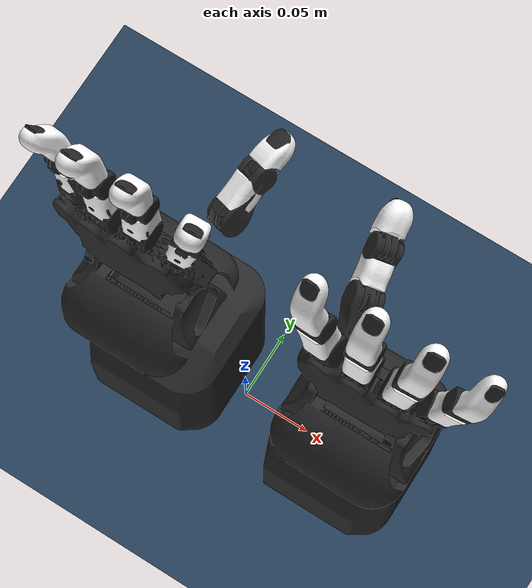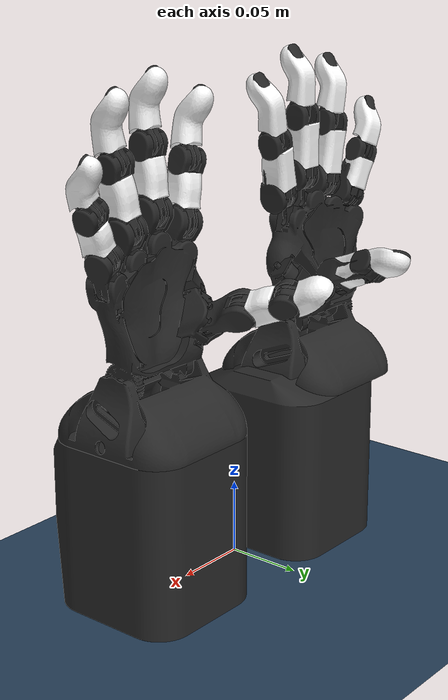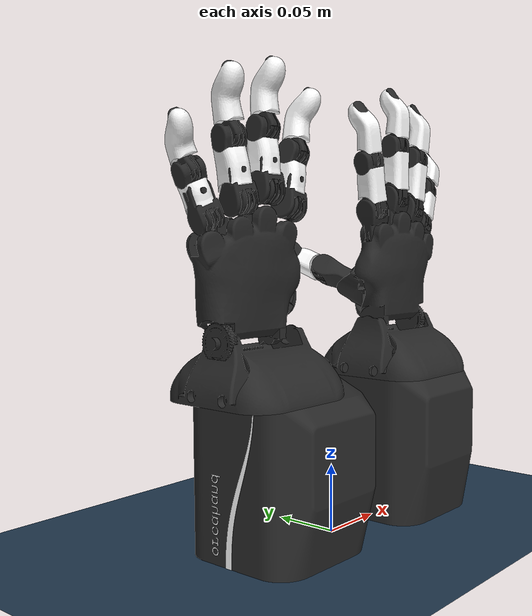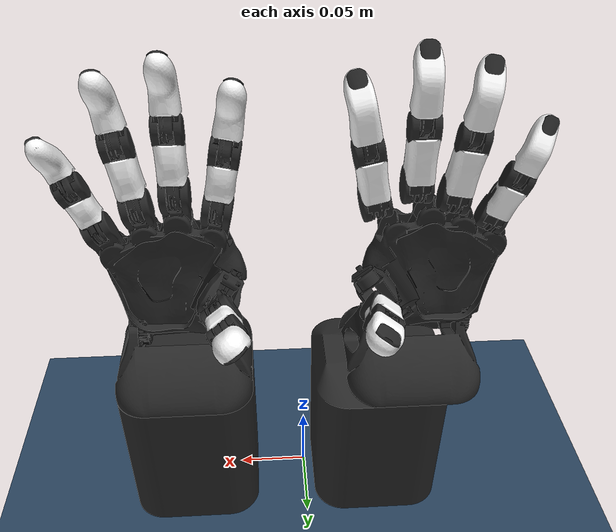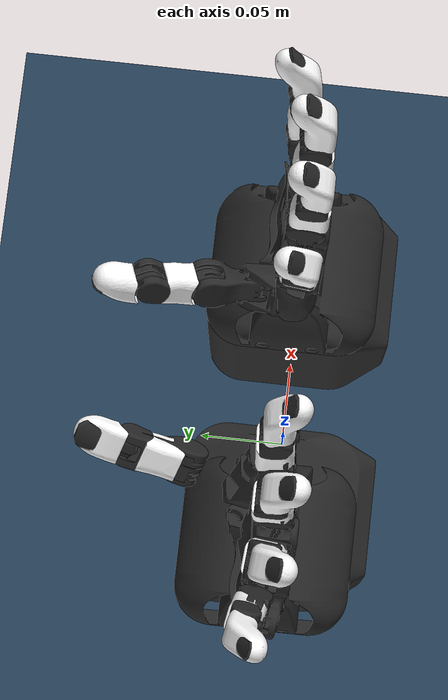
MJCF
<?xml version="1.0" ?>
<mujoco model="ORCA hand combined scene">

  <include file="models/assets/scene.xml"/>

  <include file="models/assets/options.xml"/>

  <include file="models/mjcf/orcahand_left.mjcf"/>
  <include file="models/mjcf/orcahand_right.mjcf"/>

  <worldbody>
    <body name="left_mount" pos="-0.06363 0.00332 0.058" euler="1.5708 0 0">
      <include file="models/mjcf/orcahand_left_body.xml"/>
    </body>
    <body name="right_mount" pos="0.09363 0.00332 0.058" euler="1.5708 0 0">
      <include file="models/mjcf/orcahand_right_body.xml"/>
    </body>
  </worldbody>

</mujoco>

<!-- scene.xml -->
<mujoco model="orcahand_v2_scene">

  <!-- Camera placement -->
  <statistic extent="0.3" center="0 0 0.15"/>
  <visual>
    <rgba haze="0.15 0.25 0.35 1"/>
    <quality shadowsize="8192"/>
    <global azimuth="220" elevation="-30"/>
  </visual>

  <!-- Background -->
  <asset>
    <texture type="skybox" builtin="gradient" rgb1="0.3 0.5 0.7" rgb2="0 0 0" width="512" height="3072"/>
    <texture type="2d" name="groundplane" builtin="checker" mark="edge" rgb1="0.2 0.3 0.4" rgb2="0.1 0.2 0.3"
      markrgb="0.8 0.8 0.8" width="300" height="300"/>
    <material name="groundplane" texture="groundplane" texuniform="true" texrepeat="5 5" reflectance="0.2"/>
  </asset>

  <worldbody>
    <!-- Lighting and floor -->
    <light pos="0 0.5 1" dir="0 -0.3 -1" diffuse="0.8 0.8 0.8" specular="0.2 0.2 0.2"/>
    <light pos="0.3 0.5 1.5" dir="0 -0.3 -1" directional="true" diffuse="0.6 0.6 0.6" specular="0.1 0.1 0.1"/>
    <geom name="floor" pos="0 0 0" size="0 0 0.05" type="plane" material="groundplane"/>

  </worldbody>

</mujoco>

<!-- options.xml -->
<mujoco model="orcahand_v2_options">

  <!-- eulerseq "XYZ" corresponds to URDF "rpy" -->
  <compiler angle="radian" eulerseq="XYZ"/>

  <default>
    <mesh scale="0.001 0.001 0.001"/>
    <!-- Visual classes -->
    <default class="visual_base">
      <geom conaffinity="0" condim="1" contype="0" group="2" type="mesh"/>
      <default class="skin">
        <geom material="white"/>
      </default>
      <default class="bone">
        <geom material="black"/>
      </default>
    </default>
    <!-- Collision class -->
    <default class="collision">
      <geom conaffinity="1" condim="3" contype="1" group="1" material="invisible" type="mesh"/>
    </default>
    <!-- Joints -->
    <joint armature="0.001" damping="0.1" frictionloss="0.001" limited="true" margin="0.01" type="hinge"/>
    <position ctrllimited="true" forcelimited="true" forcerange="-1 1" kp="2.0"/>
  </default>

  <asset>
    <!-- Materials -->
    <material name="white" rgba="1 1 1 1" shininess="0.02" specular="0.005"/>
    <material name="black" rgba="0.1569 0.1569 0.1569 1" shininess="0.5" specular="0.1"/>
    <material name="invisible" rgba="1 1 1 0" shininess="0" specular="0"/>
  </asset>

</mujoco>

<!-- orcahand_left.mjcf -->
<mujoco model="orcahand_left">
	<default>
		<geom type="mesh" friction="1 0.005 0.001" condim="3" margin="0.0005" contype="1" conaffinity="1" />
		<joint type="hinge" limited="true" damping="0.1" armature="0.001" margin="0.01" frictionloss="0.001" />
		<position ctrllimited="true" forcelimited="true" forcerange="-1 1" kp="2.0" />
		<mesh scale="0.001 0.001 0.001" />
	</default>
	<asset>
		<mesh name="left_L-Carpals" file="models/assets/left/L-Carpals.stl" />
		<mesh name="left_P-Assembly" file="models/assets/left/P-Assembly.stl" />
		<mesh name="left_L-T-AP" file="models/assets/left/L-T-AP.stl" />
		<mesh name="left_M-PP" file="models/assets/left/M-PP.stl" />
		<mesh name="left_I-L-Assembly" file="models/assets/left/I-L-Assembly.stl" />
		<mesh name="left_I-PP" file="models/assets/left/I-PP.stl" />
		<mesh name="left_P-AP" file="models/assets/left/P-AP.stl" />
		<mesh name="left_I-AP-L" file="models/assets/left/I-AP-L.stl" />
		<mesh name="left_T-TP-L" file="models/assets/left/T-TP-L.stl" />
		<mesh name="left_ForeArmStructure-Model" file="models/assets/left/ForeArmStructure-Model.stl" />
		<mesh name="left_P-FingerTipAssembly" file="models/assets/left/P-FingerTipAssembly.stl" />
		<mesh name="left_T-DP" file="models/assets/left/T-DP.stl" />
		<mesh name="left_TopTower-Model" file="models/assets/left/TopTower-Model.stl" />
		<mesh name="left_I-FingerTipAssembly" file="models/assets/left/I-FingerTipAssembly.stl" />
		<mesh name="left_T-PP" file="models/assets/left/T-PP.stl" />
		<mesh name="left_M-AP" file="models/assets/left/M-AP.stl" />
		<mesh name="left_M-FingerTipAssembly" file="models/assets/left/M-FingerTipAssembly.stl" />
		<mesh name="left_P-PP" file="models/assets/left/P-PP.stl" />
		<mesh name="left_ForeArmStructure-Model_Logo" file="models/assets/left/ForeArmStructure-Model_Logo.stl" />
		<mesh name="left_T-L-Assembly" file="models/assets/left/T-L-Assembly.stl" />
		<mesh name="left_M-Assembly" file="models/assets/left/M-Assembly.stl" />
		<mesh name="left_T-PP_Skin" file="models/assets/left/T-PP_Skin.stl" />
		<mesh name="left_P-IP_IP" file="models/assets/left/P-IP_IP.stl" />
		<mesh name="left_M-PP_PP" file="models/assets/left/M-PP_PP.stl" />
		<mesh name="left_M-PP_Skin" file="models/assets/left/M-PP_Skin.stl" />
		<mesh name="left_T-DP_Skin" file="models/assets/left/T-DP_Skin.stl" />
		<mesh name="left_P-FingerTipAssembly_P-DP-Skin" file="models/assets/left/P-FingerTipAssembly_P-DP-Skin.stl" />
		<mesh name="left_T-PP_PP" file="models/assets/left/T-PP_PP.stl" />
		<mesh name="left_I-IP_IP" file="models/assets/left/I-IP_IP.stl" />
		<mesh name="left_T-DP_T-DP" file="models/assets/left/T-DP_T-DP.stl" />
		<mesh name="left_P-PP_Skin" file="models/assets/left/P-PP_Skin.stl" />
		<mesh name="left_I-PP_PP" file="models/assets/left/I-PP_PP.stl" />
		<mesh name="left_I-FingerTipAssembly_I-DP-Skin" file="models/assets/left/I-FingerTipAssembly_I-DP-Skin.stl" />
		<mesh name="left_P-PP_PP" file="models/assets/left/P-PP_PP.stl" />
		<mesh name="left_I-PP_Skin" file="models/assets/left/I-PP_Skin.stl" />
		<mesh name="left_M-IP_IP" file="models/assets/left/M-IP_IP.stl" />
		<mesh name="left_M-FingerTipAssembly_M-DP-Skin" file="models/assets/left/M-FingerTipAssembly_M-DP-Skin.stl" />
	</asset>
	<actuator>
		<position name="left_wrist_actuator" joint="left_wrist" ctrlrange="-1.1344640137963142 0.6108652381980153" />
		<position name="left_p-abd_actuator" joint="left_p-abd" ctrlrange="-0.5235987755982988 0.5235987755982988" />
		<position name="left_p-mcp_actuator" joint="left_p-mcp" ctrlrange="-0.4363323129985824 1.7453292519943295" />
		<position name="left_p-pip_actuator" joint="left_p-pip" ctrlrange="-0.2617993877991494 1.8675022996339325" />
		<position name="left_r-abd_actuator" joint="left_r-abd" ctrlrange="-0.47123889803846897 0.47123889803846897" />
		<position name="left_r-mcp_actuator" joint="left_r-mcp" ctrlrange="-0.4363323129985824 1.7453292519943295" />
		<position name="left_r-pip_actuator" joint="left_r-pip" ctrlrange="-0.2617993877991494 1.8675022996339325" />
		<position name="left_m-abd_actuator" joint="left_m-abd" ctrlrange="-0.47123889803846897 0.47123889803846897" />
		<position name="left_m-mcp_actuator" joint="left_m-mcp" ctrlrange="-0.4363323129985824 1.7453292519943295" />
		<position name="left_m-pip_actuator" joint="left_m-pip" ctrlrange="-0.2617993877991494 1.8675022996339325" />
		<position name="left_i-abd_actuator" joint="left_i-abd" ctrlrange="-0.436332313 0.5235987756" />
		<position name="left_i-mcp_actuator" joint="left_i-mcp" ctrlrange="-0.4363323129985824 1.7453292519943295" />
		<position name="left_i-pip_actuator" joint="left_i-pip" ctrlrange="-0.2617993877991494 1.8675022996339325" />
		<position name="left_t-cmc_actuator" joint="left_t-cmc" ctrlrange="-0.7853981633974483 0.5759586531581288" />
		<position name="left_t-abd_actuator" joint="left_t-abd" ctrlrange="-0.3141592653589793 0.9599310885968813" />
		<position name="left_t-mcp_actuator" joint="left_t-mcp" ctrlrange="-0.4363323129985824 1.7453292519943295" />
		<position name="left_t-pip_actuator" joint="left_t-pip" ctrlrange="-0.2617993877991494 1.8675022996339325" />
	</actuator>
	<contact>
		<exclude body1="left_ForeArmStructure-Model_e18f2368" body2="left_TopTower-Model_4a80d30e" />
		<exclude body1="left_ForeArmStructure-Model_e18f2368" body2="left_L-Carpals_719fff8c" />
		<exclude body1="left_TopTower-Model_4a80d30e" body2="left_L-Carpals_719fff8c" />
		<exclude body1="left_ForeArmStructure-Model_e18f2368" body2="left_P-AP_f5e42b61" />
		<exclude body1="left_TopTower-Model_4a80d30e" body2="left_P-AP_f5e42b61" />
		<exclude body1="left_L-Carpals_719fff8c" body2="left_P-AP_f5e42b61" />
		<exclude body1="left_ForeArmStructure-Model_e18f2368" body2="left_P-PP_1d411b9b" />
		<exclude body1="left_TopTower-Model_4a80d30e" body2="left_P-PP_1d411b9b" />
		<exclude body1="left_L-Carpals_719fff8c" body2="left_P-PP_1d411b9b" />
		<exclude body1="left_P-AP_f5e42b61" body2="left_P-PP_1d411b9b" />
		<exclude body1="left_ForeArmStructure-Model_e18f2368" body2="left_P-FingerTipAssembly_cd219176" />
		<exclude body1="left_TopTower-Model_4a80d30e" body2="left_P-FingerTipAssembly_cd219176" />
		<exclude body1="left_L-Carpals_719fff8c" body2="left_P-FingerTipAssembly_cd219176" />
		<exclude body1="left_P-AP_f5e42b61" body2="left_P-FingerTipAssembly_cd219176" />
		<exclude body1="left_P-PP_1d411b9b" body2="left_P-FingerTipAssembly_cd219176" />
		<exclude body1="left_ForeArmStructure-Model_e18f2368" body2="left_M-AP_6ec59111" />
		<exclude body1="left_TopTower-Model_4a80d30e" body2="left_M-AP_6ec59111" />
		<exclude body1="left_L-Carpals_719fff8c" body2="left_M-AP_6ec59111" />
		<exclude body1="left_ForeArmStructure-Model_e18f2368" body2="left_M-PP_8660a1eb" />
		<exclude body1="left_TopTower-Model_4a80d30e" body2="left_M-PP_8660a1eb" />
		<exclude body1="left_L-Carpals_719fff8c" body2="left_M-PP_8660a1eb" />
		<exclude body1="left_M-AP_6ec59111" body2="left_M-PP_8660a1eb" />
		<exclude body1="left_ForeArmStructure-Model_e18f2368" body2="left_M-FingerTipAssembly_424a8e75" />
		<exclude body1="left_TopTower-Model_4a80d30e" body2="left_M-FingerTipAssembly_424a8e75" />
		<exclude body1="left_L-Carpals_719fff8c" body2="left_M-FingerTipAssembly_424a8e75" />
		<exclude body1="left_M-AP_6ec59111" body2="left_M-FingerTipAssembly_424a8e75" />
		<exclude body1="left_M-PP_8660a1eb" body2="left_M-FingerTipAssembly_424a8e75" />
		<exclude body1="left_ForeArmStructure-Model_e18f2368" body2="left_M-AP_e04a96f2" />
		<exclude body1="left_TopTower-Model_4a80d30e" body2="left_M-AP_e04a96f2" />
		<exclude body1="left_L-Carpals_719fff8c" body2="left_M-AP_e04a96f2" />
		<exclude body1="left_ForeArmStructure-Model_e18f2368" body2="left_M-PP_08efa608" />
		<exclude body1="left_TopTower-Model_4a80d30e" body2="left_M-PP_08efa608" />
		<exclude body1="left_L-Carpals_719fff8c" body2="left_M-PP_08efa608" />
		<exclude body1="left_M-AP_e04a96f2" body2="left_M-PP_08efa608" />
		<exclude body1="left_ForeArmStructure-Model_e18f2368" body2="left_M-FingerTipAssembly_34afb748" />
		<exclude body1="left_TopTower-Model_4a80d30e" body2="left_M-FingerTipAssembly_34afb748" />
		<exclude body1="left_L-Carpals_719fff8c" body2="left_M-FingerTipAssembly_34afb748" />
		<exclude body1="left_M-AP_e04a96f2" body2="left_M-FingerTipAssembly_34afb748" />
		<exclude body1="left_M-PP_08efa608" body2="left_M-FingerTipAssembly_34afb748" />
		<exclude body1="left_ForeArmStructure-Model_e18f2368" body2="left_I-AP-L_57ce92f7" />
		<exclude body1="left_TopTower-Model_4a80d30e" body2="left_I-AP-L_57ce92f7" />
		<exclude body1="left_L-Carpals_719fff8c" body2="left_I-AP-L_57ce92f7" />
		<exclude body1="left_ForeArmStructure-Model_e18f2368" body2="left_I-PP_3df4f91d" />
		<exclude body1="left_TopTower-Model_4a80d30e" body2="left_I-PP_3df4f91d" />
		<exclude body1="left_L-Carpals_719fff8c" body2="left_I-PP_3df4f91d" />
		<exclude body1="left_I-AP-L_57ce92f7" body2="left_I-PP_3df4f91d" />
		<exclude body1="left_ForeArmStructure-Model_e18f2368" body2="left_I-FingerTipAssembly_ed91b18a" />
		<exclude body1="left_TopTower-Model_4a80d30e" body2="left_I-FingerTipAssembly_ed91b18a" />
		<exclude body1="left_L-Carpals_719fff8c" body2="left_I-FingerTipAssembly_ed91b18a" />
		<exclude body1="left_I-AP-L_57ce92f7" body2="left_I-FingerTipAssembly_ed91b18a" />
		<exclude body1="left_I-PP_3df4f91d" body2="left_I-FingerTipAssembly_ed91b18a" />
		<exclude body1="left_ForeArmStructure-Model_e18f2368" body2="left_T-TP-L_92b8100b" />
		<exclude body1="left_TopTower-Model_4a80d30e" body2="left_T-TP-L_92b8100b" />
		<exclude body1="left_L-Carpals_719fff8c" body2="left_T-TP-L_92b8100b" />
		<exclude body1="left_ForeArmStructure-Model_e18f2368" body2="left_L-T-AP_58680c44" />
		<exclude body1="left_TopTower-Model_4a80d30e" body2="left_L-T-AP_58680c44" />
		<exclude body1="left_L-Carpals_719fff8c" body2="left_L-T-AP_58680c44" />
		<exclude body1="left_T-TP-L_92b8100b" body2="left_L-T-AP_58680c44" />
		<exclude body1="left_ForeArmStructure-Model_e18f2368" body2="left_T-PP_ef067304" />
		<exclude body1="left_TopTower-Model_4a80d30e" body2="left_T-PP_ef067304" />
		<exclude body1="left_L-Carpals_719fff8c" body2="left_T-PP_ef067304" />
		<exclude body1="left_T-TP-L_92b8100b" body2="left_T-PP_ef067304" />
		<exclude body1="left_L-T-AP_58680c44" body2="left_T-PP_ef067304" />
		<exclude body1="left_ForeArmStructure-Model_e18f2368" body2="left_T-DP_307db3cc" />
		<exclude body1="left_TopTower-Model_4a80d30e" body2="left_T-DP_307db3cc" />
		<exclude body1="left_L-Carpals_719fff8c" body2="left_T-DP_307db3cc" />
		<exclude body1="left_T-TP-L_92b8100b" body2="left_T-DP_307db3cc" />
		<exclude body1="left_L-T-AP_58680c44" body2="left_T-DP_307db3cc" />
		<exclude body1="left_T-PP_ef067304" body2="left_T-DP_307db3cc" />
	</contact>
</mujoco>

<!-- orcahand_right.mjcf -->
<mujoco model="orcahand_right">
	<default>
		<geom type="mesh" friction="1 0.005 0.001" condim="3" margin="0.0005" contype="1" conaffinity="1" />
		<joint type="hinge" limited="true" damping="0.1" armature="0.001" margin="0.01" frictionloss="0.001" />
		<position ctrllimited="true" forcelimited="true" forcerange="-1 1" kp="2.0" />
		<mesh scale="0.001 0.001 0.001" />
	</default>
	<asset>
		<mesh name="right_I-R-Assembly" file="models/assets/right/I-R-Assembly.stl" />
		<mesh name="right_P-Assembly" file="models/assets/right/P-Assembly.stl" />
		<mesh name="right_R-T-AP" file="models/assets/right/R-T-AP.stl" />
		<mesh name="right_M-PP" file="models/assets/right/M-PP.stl" />
		<mesh name="right_I-PP" file="models/assets/right/I-PP.stl" />
		<mesh name="right_P-AP" file="models/assets/right/P-AP.stl" />
		<mesh name="right_ForeArmStructure-Model" file="models/assets/right/ForeArmStructure-Model.stl" />
		<mesh name="right_P-FingerTipAssembly" file="models/assets/right/P-FingerTipAssembly.stl" />
		<mesh name="right_T-DP" file="models/assets/right/T-DP.stl" />
		<mesh name="right_TopTower-Model" file="models/assets/right/TopTower-Model.stl" />
		<mesh name="right_I-FingerTipAssembly" file="models/assets/right/I-FingerTipAssembly.stl" />
		<mesh name="right_I-AP-R" file="models/assets/right/I-AP-R.stl" />
		<mesh name="right_T-TP-R" file="models/assets/right/T-TP-R.stl" />
		<mesh name="right_R-Carpals" file="models/assets/right/R-Carpals.stl" />
		<mesh name="right_T-PP" file="models/assets/right/T-PP.stl" />
		<mesh name="right_M-AP" file="models/assets/right/M-AP.stl" />
		<mesh name="right_M-FingerTipAssembly" file="models/assets/right/M-FingerTipAssembly.stl" />
		<mesh name="right_T-R-Assembly" file="models/assets/right/T-R-Assembly.stl" />
		<mesh name="right_P-PP" file="models/assets/right/P-PP.stl" />
		<mesh name="right_ForeArmStructure-Model_Logo" file="models/assets/right/ForeArmStructure-Model_Logo.stl" />
		<mesh name="right_M-Assembly" file="models/assets/right/M-Assembly.stl" />
		<mesh name="right_T-PP_Skin" file="models/assets/right/T-PP_Skin.stl" />
		<mesh name="right_P-IP_IP" file="models/assets/right/P-IP_IP.stl" />
		<mesh name="right_M-PP_PP" file="models/assets/right/M-PP_PP.stl" />
		<mesh name="right_M-PP_Skin" file="models/assets/right/M-PP_Skin.stl" />
		<mesh name="right_T-DP_Skin" file="models/assets/right/T-DP_Skin.stl" />
		<mesh name="right_P-FingerTipAssembly_P-DP-Skin" file="models/assets/right/P-FingerTipAssembly_P-DP-Skin.stl" />
		<mesh name="right_T-PP_PP" file="models/assets/right/T-PP_PP.stl" />
		<mesh name="right_I-IP_IP" file="models/assets/right/I-IP_IP.stl" />
		<mesh name="right_T-DP_T-DP" file="models/assets/right/T-DP_T-DP.stl" />
		<mesh name="right_P-PP_Skin" file="models/assets/right/P-PP_Skin.stl" />
		<mesh name="right_I-PP_PP" file="models/assets/right/I-PP_PP.stl" />
		<mesh name="right_I-FingerTipAssembly_I-DP-Skin" file="models/assets/right/I-FingerTipAssembly_I-DP-Skin.stl" />
		<mesh name="right_P-PP_PP" file="models/assets/right/P-PP_PP.stl" />
		<mesh name="right_I-PP_Skin" file="models/assets/right/I-PP_Skin.stl" />
		<mesh name="right_M-IP_IP" file="models/assets/right/M-IP_IP.stl" />
		<mesh name="right_M-FingerTipAssembly_M-DP-Skin" file="models/assets/right/M-FingerTipAssembly_M-DP-Skin.stl" />
	</asset>
	<actuator>
		<position name="right_wrist_actuator" joint="right_wrist" ctrlrange="-1.1344640137963142 0.6108652381980153" />
		<position name="right_p-abd_actuator" joint="right_p-abd" ctrlrange="-0.5235987755982988 0.5235987755982988" />
		<position name="right_p-mcp_actuator" joint="right_p-mcp" ctrlrange="-0.4363323129985824 1.7453292519943295" />
		<position name="right_p-pip_actuator" joint="right_p-pip" ctrlrange="-0.2617993877991494 1.8675022996339325" />
		<position name="right_r-abd_actuator" joint="right_r-abd" ctrlrange="-0.47123889803846897 0.47123889803846897" />
		<position name="right_r-mcp_actuator" joint="right_r-mcp" ctrlrange="-0.4363323129985824 1.7453292519943295" />
		<position name="right_r-pip_actuator" joint="right_r-pip" ctrlrange="-0.2617993877991494 1.8675022996339325" />
		<position name="right_m-abd_actuator" joint="right_m-abd" ctrlrange="-0.47123889803846897 0.47123889803846897" />
		<position name="right_m-mcp_actuator" joint="right_m-mcp" ctrlrange="-0.4363323129985824 1.7453292519943295" />
		<position name="right_m-pip_actuator" joint="right_m-pip" ctrlrange="-0.2617993877991494 1.8675022996339325" />
		<position name="right_i-abd_actuator" joint="right_i-abd" ctrlrange="-0.4363323129985824 0.5235987755982988" />
		<position name="right_i-mcp_actuator" joint="right_i-mcp" ctrlrange="-0.4363323129985824 1.7453292519943295" />
		<position name="right_i-pip_actuator" joint="right_i-pip" ctrlrange="-0.2617993877991494 1.8675022996339325" />
		<position name="right_t-cmc_actuator" joint="right_t-cmc" ctrlrange="-0.7853981633974483 0.5759586531581288" />
		<position name="right_t-abd_actuator" joint="right_t-abd" ctrlrange="-0.3141592653589793 0.9599310885968813" />
		<position name="right_t-mcp_actuator" joint="right_t-mcp" ctrlrange="-0.4363323129985824 1.7453292519943295" />
		<position name="right_t-pip_actuator" joint="right_t-pip" ctrlrange="-0.2617993877991494 1.8675022996339325" />
	</actuator>
	<contact>
		<exclude body1="right_ForeArmStructure-Model_e18f2368" body2="right_TopTower-Model_4a80d30e" />
		<exclude body1="right_ForeArmStructure-Model_e18f2368" body2="right_R-Carpals_8d1f1041" />
		<exclude body1="right_TopTower-Model_4a80d30e" body2="right_R-Carpals_8d1f1041" />
		<exclude body1="right_ForeArmStructure-Model_e18f2368" body2="right_P-AP_f5e42b61" />
		<exclude body1="right_TopTower-Model_4a80d30e" body2="right_P-AP_f5e42b61" />
		<exclude body1="right_R-Carpals_8d1f1041" body2="right_P-AP_f5e42b61" />
		<exclude body1="right_ForeArmStructure-Model_e18f2368" body2="right_P-PP_1d411b9b" />
		<exclude body1="right_TopTower-Model_4a80d30e" body2="right_P-PP_1d411b9b" />
		<exclude body1="right_R-Carpals_8d1f1041" body2="right_P-PP_1d411b9b" />
		<exclude body1="right_P-AP_f5e42b61" body2="right_P-PP_1d411b9b" />
		<exclude body1="right_ForeArmStructure-Model_e18f2368" body2="right_P-FingerTipAssembly_cd219176" />
		<exclude body1="right_TopTower-Model_4a80d30e" body2="right_P-FingerTipAssembly_cd219176" />
		<exclude body1="right_R-Carpals_8d1f1041" body2="right_P-FingerTipAssembly_cd219176" />
		<exclude body1="right_P-AP_f5e42b61" body2="right_P-FingerTipAssembly_cd219176" />
		<exclude body1="right_P-PP_1d411b9b" body2="right_P-FingerTipAssembly_cd219176" />
		<exclude body1="right_ForeArmStructure-Model_e18f2368" body2="right_M-AP_6ec59111" />
		<exclude body1="right_TopTower-Model_4a80d30e" body2="right_M-AP_6ec59111" />
		<exclude body1="right_R-Carpals_8d1f1041" body2="right_M-AP_6ec59111" />
		<exclude body1="right_ForeArmStructure-Model_e18f2368" body2="right_M-PP_8660a1eb" />
		<exclude body1="right_TopTower-Model_4a80d30e" body2="right_M-PP_8660a1eb" />
		<exclude body1="right_R-Carpals_8d1f1041" body2="right_M-PP_8660a1eb" />
		<exclude body1="right_M-AP_6ec59111" body2="right_M-PP_8660a1eb" />
		<exclude body1="right_ForeArmStructure-Model_e18f2368" body2="right_M-FingerTipAssembly_424a8e75" />
		<exclude body1="right_TopTower-Model_4a80d30e" body2="right_M-FingerTipAssembly_424a8e75" />
		<exclude body1="right_R-Carpals_8d1f1041" body2="right_M-FingerTipAssembly_424a8e75" />
		<exclude body1="right_M-AP_6ec59111" body2="right_M-FingerTipAssembly_424a8e75" />
		<exclude body1="right_M-PP_8660a1eb" body2="right_M-FingerTipAssembly_424a8e75" />
		<exclude body1="right_ForeArmStructure-Model_e18f2368" body2="right_M-AP_e04a96f2" />
		<exclude body1="right_TopTower-Model_4a80d30e" body2="right_M-AP_e04a96f2" />
		<exclude body1="right_R-Carpals_8d1f1041" body2="right_M-AP_e04a96f2" />
		<exclude body1="right_ForeArmStructure-Model_e18f2368" body2="right_M-PP_08efa608" />
		<exclude body1="right_TopTower-Model_4a80d30e" body2="right_M-PP_08efa608" />
		<exclude body1="right_R-Carpals_8d1f1041" body2="right_M-PP_08efa608" />
		<exclude body1="right_M-AP_e04a96f2" body2="right_M-PP_08efa608" />
		<exclude body1="right_ForeArmStructure-Model_e18f2368" body2="right_M-FingerTipAssembly_34afb748" />
		<exclude body1="right_TopTower-Model_4a80d30e" body2="right_M-FingerTipAssembly_34afb748" />
		<exclude body1="right_R-Carpals_8d1f1041" body2="right_M-FingerTipAssembly_34afb748" />
		<exclude body1="right_M-AP_e04a96f2" body2="right_M-FingerTipAssembly_34afb748" />
		<exclude body1="right_M-PP_08efa608" body2="right_M-FingerTipAssembly_34afb748" />
		<exclude body1="right_ForeArmStructure-Model_e18f2368" body2="right_I-AP-R_d95d02d1" />
		<exclude body1="right_TopTower-Model_4a80d30e" body2="right_I-AP-R_d95d02d1" />
		<exclude body1="right_R-Carpals_8d1f1041" body2="right_I-AP-R_d95d02d1" />
		<exclude body1="right_ForeArmStructure-Model_e18f2368" body2="right_I-PP_bacbd481" />
		<exclude body1="right_TopTower-Model_4a80d30e" body2="right_I-PP_bacbd481" />
		<exclude body1="right_R-Carpals_8d1f1041" body2="right_I-PP_bacbd481" />
		<exclude body1="right_I-AP-R_d95d02d1" body2="right_I-PP_bacbd481" />
		<exclude body1="right_ForeArmStructure-Model_e18f2368" body2="right_I-FingerTipAssembly_ec49c16c" />
		<exclude body1="right_TopTower-Model_4a80d30e" body2="right_I-FingerTipAssembly_ec49c16c" />
		<exclude body1="right_R-Carpals_8d1f1041" body2="right_I-FingerTipAssembly_ec49c16c" />
		<exclude body1="right_I-AP-R_d95d02d1" body2="right_I-FingerTipAssembly_ec49c16c" />
		<exclude body1="right_I-PP_bacbd481" body2="right_I-FingerTipAssembly_ec49c16c" />
		<exclude body1="right_ForeArmStructure-Model_e18f2368" body2="right_T-TP-R_1c2b802d" />
		<exclude body1="right_TopTower-Model_4a80d30e" body2="right_T-TP-R_1c2b802d" />
		<exclude body1="right_R-Carpals_8d1f1041" body2="right_T-TP-R_1c2b802d" />
		<exclude body1="right_ForeArmStructure-Model_e18f2368" body2="right_R-T-AP_a9723101" />
		<exclude body1="right_TopTower-Model_4a80d30e" body2="right_R-T-AP_a9723101" />
		<exclude body1="right_R-Carpals_8d1f1041" body2="right_R-T-AP_a9723101" />
		<exclude body1="right_T-TP-R_1c2b802d" body2="right_R-T-AP_a9723101" />
		<exclude body1="right_ForeArmStructure-Model_e18f2368" body2="right_T-PP_68395e98" />
		<exclude body1="right_TopTower-Model_4a80d30e" body2="right_T-PP_68395e98" />
		<exclude body1="right_R-Carpals_8d1f1041" body2="right_T-PP_68395e98" />
		<exclude body1="right_T-TP-R_1c2b802d" body2="right_T-PP_68395e98" />
		<exclude body1="right_R-T-AP_a9723101" body2="right_T-PP_68395e98" />
		<exclude body1="right_ForeArmStructure-Model_e18f2368" body2="right_T-DP_b7429e50" />
		<exclude body1="right_TopTower-Model_4a80d30e" body2="right_T-DP_b7429e50" />
		<exclude body1="right_R-Carpals_8d1f1041" body2="right_T-DP_b7429e50" />
		<exclude body1="right_T-TP-R_1c2b802d" body2="right_T-DP_b7429e50" />
		<exclude body1="right_R-T-AP_a9723101" body2="right_T-DP_b7429e50" />
		<exclude body1="right_T-PP_68395e98" body2="right_T-DP_b7429e50" />
	</contact>
</mujoco>

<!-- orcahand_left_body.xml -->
<mujoco model="orcahand_left_body">
	<body name="left_tower" quat="1.0 0.0 0.0 0.0">
		<body name="left_ForeArmStructure-Model_e18f2368" pos="0.0 0.0 0.0" quat="1.0 0.0 0.0 0.0">
			<body name="left_TopTower-Model_4a80d30e" pos="-0.010000000000000018 0.05230000000000584 -2.0816681711721685e-17" quat="-0.4999999999999985 0.4999999999999986 -0.5 -0.49999999999999994">
				<body name="left_L-Carpals_719fff8c" pos="-0.0018770780631086439 0.005000000000000008 0.0895000006705525" quat="-0.7071067811865476 -1.7172886266853953e-17 -7.605135346749523e-17 0.7071067811865495">
					<body name="left_T-TP-L_92b8100b" pos="0.031213412275949873 0.01433246945435058 -0.02172481544690435" quat="0.656374345900825 -0.07257037461795694 0.3594909813403495 -0.6592969688281836">
						<body name="left_L-T-AP_58680c44" pos="-0.035999999999999976 1.0408340855860843e-17 -1.2533377113932431e-16" quat="0.8191520442889911 0.5735764363510457 -6.661338147750939e-16 1.609823385706477e-15">
							<body name="left_T-PP_ef067304" pos="3.6356335937636955e-17 -7.738818763564917e-18 -1.3080846264541988e-17" quat="1.4432899320127035e-15 -0.7071067811865464 -9.159339953157541e-16 0.707106781186545">
								<body name="left_T-DP_307db3cc" pos="0.0009999999999999853 -2.2551405187698492e-17 0.03200000000000017" quat="1.0000000000000027 0.0 2.7755575615628914e-17 1.942890293094024e-15">
									<joint name="left_t-pip" pos="6.724022184779712e-17 -4.880775102973274e-17 1.5021079906053094e-16" axis="-8.604228440844963e-16 -0.9999999999999971 -4.440892098500626e-16" range="-0.2617993877991494 1.8675022996339325" ref="0.0" />
									<geom mesh="left_T-DP_T-DP" material="black" pos="0.0 0.0 0.0" quat="1.0 0.0 0.0 0.0" />
									<geom mesh="left_T-DP_Skin" material="white" pos="0.0 0.0 0.0" quat="1.0 0.0 0.0 0.0" contype="0" conaffinity="0" />
								</body>
								<joint name="left_t-mcp" pos="-3.7171156597089945e-17 -5.821788984262281e-17 6.75998716698855e-17" axis="3.1086244689504383e-15 -1.0000000000000049 -2.7755575615628914e-16" range="-0.4363323129985824 1.7453292519943295" ref="0.0" />
								<geom mesh="left_T-PP_Skin" material="white" pos="-1.7763568394002505e-17 -1.7763568394002505e-17 1.7763568394002505e-17" quat="1.0 2.0816681711721685e-17 1.3877787807814457e-17 -1.3877787807814457e-17" contype="0" conaffinity="0" />
								<geom mesh="left_T-PP_PP" material="black" pos="-1.7763568394002505e-17 -1.7763568394002505e-17 1.7763568394002505e-17" quat="1.0 2.0816681711721685e-17 1.3877787807814457e-17 -1.3877787807814457e-17" />
							</body>
							<joint name="left_t-abd" pos="0.028000000000000018 -2.7755575615628914e-17 2.7321894746634712e-17" axis="1.27675647831893e-15 0.3420201433256675 -0.9396926207859057" range="-0.3141592653589793 0.9599310885968813" ref="0.0" />
							<geom mesh="left_L-T-AP" material="black" />
						</body>
						<joint name="left_t-cmc" pos="1.5016200088924236e-17 5.139118297581291e-17 0.0038500000000000643" axis="-2.435551760271437e-15 3.885780586188048e-16 0.9999999999999951" range="-0.7853981633974483 0.5759586531581288" ref="0.0" />
						<geom mesh="left_T-TP-L" material="black" />
					</body>
					<body name="left_I-AP-L_57ce92f7" pos="0.03557227633914042 0.0006806400972512766 0.03835792095624094" quat="-0.47163838811428216 -0.4317797959371625 -0.5666863557305154 0.5196056320963941">
						<body name="left_I-PP_3df4f91d" pos="-0.0004009681508766555 -7.792703114739563e-18 2.9526348813840864e-15" quat="-0.7071067811865466 -2.3314683517128287e-15 0.7071067811865461 2.0539125955565396e-15">
							<body name="left_I-FingerTipAssembly_ed91b18a" pos="0.0014999999999999937 5.637851296924623e-18 0.03700000000000012" quat="1.0000000000000022 1.5959455978986625e-16 -1.3877787807814457e-17 3.3306690738754696e-15">
								<joint name="left_i-pip" pos="4.938281810987171e-18 -1.7671634284259278e-17 -5.964481871782928e-17" axis="-3.552713678800501e-15 -0.9999999999999964 2.706168622523819e-16" range="-0.2617993877991494 1.8675022996339325" ref="0.0" />
								<geom mesh="left_I-FingerTipAssembly_I-DP-Skin" material="white" pos="0.0 0.0 0.0" quat="1.0 0.0 0.0 0.0" contype="0" conaffinity="0" />
								<geom mesh="left_I-IP_IP" material="black" pos="0.0 0.0 0.0" quat="1.0 0.0 0.0 0.0" />
							</body>
							<joint name="left_i-mcp" pos="-3.9536780632609477e-19 -8.231990831039655e-18 1.396150100408705e-16" axis="5.995204332975845e-15 -1.0000000000000038 2.0816681711721685e-17" range="-0.4363323129985824 1.7453292519943295" ref="0.0" />
							<geom mesh="left_I-PP_Skin" material="white" pos="7.28583859910259e-19 -2.220446049250313e-18 3.552713678800501e-17" quat="1.0 -6.938893903907228e-18 -1.3010426069826053e-18 5.637851296924623e-18" contype="0" conaffinity="0" />
							<geom mesh="left_I-PP_PP" material="black" pos="7.28583859910259e-19 -2.220446049250313e-18 3.552713678800501e-17" quat="1.0 -6.938893903907228e-18 -1.3010426069826053e-18 5.637851296924623e-18" />
						</body>
						<joint name="left_i-abd" pos="0.018750000000000086 -1.8214596497756474e-17 0.000999999999999993" axis="-0.03128510081059521 0.16814409541512249 -0.9852658553123104" range="-0.436332313 0.5235987756" ref="-0.0" />
						<geom mesh="left_I-AP-L" material="black" />
					</body>
					<body name="left_M-AP_e04a96f2" pos="0.010758073950624194 -0.0011463260089169375 0.0482518232227061" quat="-0.49932759692114675 -0.4993275969211465 -0.50067150004065 0.5006715000406502">
						<body name="left_M-PP_08efa608" pos="-0.0006169679429056389 -5.936006894358137e-18 4.45032465740125e-15" quat="-0.7071067811865465 -1.942890293094024e-15 0.7071067811865461 2.1094237467877974e-15">
							<body name="left_M-FingerTipAssembly_34afb748" pos="0.002000000000000013 -3.2526065174565133e-18 0.040000000000000056" quat="1.0000000000000024 1.1655173354219173e-16 4.7813315806610746e-17 3.1086244689504383e-15">
								<joint name="left_m-pip" pos="-1.474514954580278e-17 -2.2103714476980423e-17 -1.665934659025852e-16" axis="-3.2751579226442118e-15 -0.9999999999999984 7.968885967768458e-17" range="-0.2617993877991494 1.8675022996339325" ref="0.0" />
								<geom mesh="left_M-FingerTipAssembly_M-DP-Skin" material="white" pos="0.0 0.0 0.0" quat="1.0 0.0 0.0 0.0" contype="0" conaffinity="0" />
								<geom mesh="left_M-IP_IP" material="black" pos="0.0 0.0 0.0" quat="1.0 0.0 0.0 0.0" />
							</body>
							<joint name="left_m-mcp" pos="-3.0357660829593107e-18 -1.7841522994185985e-17 -1.3882633405336455e-16" axis="5.773159728050814e-15 -1.000000000000006 -1.476683358925257e-16" range="-0.4363323129985824 1.7453292519943295" ref="0.0" />
							<geom mesh="left_M-PP_Skin" material="white" pos="0.0 2.220446049250313e-18 0.0" quat="1.0 0.0 3.0814879110195774e-33 -2.10335624051391e-31" contype="0" conaffinity="0" />
							<geom mesh="left_M-PP_PP" material="black" pos="0.0 2.220446049250313e-18 0.0" quat="1.0 0.0 3.0814879110195774e-33 -2.10335624051391e-31" />
						</body>
						<joint name="left_m-abd" pos="0.019249999999999934 -2.6020852139652106e-17 0.0009999999999999913" axis="-6.106226635438361e-16 1.6653345369377348e-16 -0.9999999999999963" range="-0.47123889803846897 0.47123889803846897" ref="-0.0" />
						<geom mesh="left_M-AP" material="black" />
					</body>
					<body name="left_M-AP_6ec59111" pos="-0.013004413961368904 -0.00010153680172964337 0.04085088188107136" quat="-0.5143887032276867 -0.554717937998398 -0.4385065669551668 0.4851847709808502">
						<body name="left_M-PP_8660a1eb" pos="-0.0006169679429056013 1.8973538018496328e-19 4.444768121267262e-15" quat="-0.7071067811865466 -1.9984014443252818e-15 0.7071067811865461 2.0539125955565396e-15">
							<body name="left_M-FingerTipAssembly_424a8e75" pos="0.002000000000000003 -2.0274580625478933e-17 0.040000000000000105" quat="1.0000000000000022 1.1102230246251565e-16 4.85722573273506e-17 3.2751579226442118e-15">
								<joint name="left_r-pip" pos="3.0277404230089883e-19 3.103847689461043e-17 -4.554030083181501e-18" axis="-3.4416913763379853e-15 -0.9999999999999967 1.5265566588595902e-16" range="-0.2617993877991494 1.8675022996339325" ref="0.0" />
								<geom mesh="left_M-FingerTipAssembly_M-DP-Skin" material="white" pos="0.0 0.0 0.0" quat="1.0 0.0 0.0 0.0" contype="0" conaffinity="0" />
								<geom mesh="left_M-IP_IP" material="black" pos="0.0 0.0 0.0" quat="1.0 0.0 0.0 0.0" />
							</body>
							<joint name="left_r-mcp" pos="7.77890138008401e-19 5.960928375611919e-19 -1.4035114566359072e-16" axis="6.050715484207103e-15 -1.0000000000000036 -5.551115123125783e-17" range="-0.4363323129985824 1.7453292519943295" ref="0.0" />
							<geom mesh="left_M-PP_Skin" material="white" pos="0.0 -4.440892098500626e-18 -3.552713678800501e-17" quat="1.0 6.938893903907228e-18 8.076402051607204e-19 -4.287881788168087e-18" contype="0" conaffinity="0" />
							<geom mesh="left_M-PP_PP" material="black" pos="0.0 -4.440892098500626e-18 -3.552713678800501e-17" quat="1.0 6.938893903907228e-18 8.076402051607204e-19 -4.287881788168087e-18" />
						</body>
						<joint name="left_r-abd" pos="0.019249999999999958 -6.938893903907228e-18 0.0009999999999999905" axis="-0.025208135220825684 -0.17180872948058878 -0.9848077530122064" range="-0.47123889803846897 0.47123889803846897" ref="-0.0" />
						<geom mesh="left_M-AP" material="black" />
					</body>
					<body name="left_P-AP_f5e42b61" pos="-0.036667924695998784 0.0050008241469496235 0.02910175144072915" quat="-0.5461467691399455 -0.613860158565644 -0.34021487235312026 0.45733275950178043">
						<body name="left_P-PP_1d411b9b" pos="3.833251243929697e-17 2.2445923627098072e-17 -3.593641296366732e-18" quat="-0.7071067811865466 -1.7763568394002505e-15 0.7071067811865459 1.7763568394002505e-15">
							<body name="left_P-FingerTipAssembly_cd219176" pos="0.000999999999999991 -7.806255641895632e-18 0.03100000000000007" quat="1.0000000000000022 6.938893903907228e-17 0.0 2.942091015256665e-15">
								<joint name="left_p-pip" pos="5.74536201685304e-18 -2.544098244259518e-17 -2.2826085315357464e-16" axis="-3.164135620181696e-15 -0.9999999999999976 1.1102230246251565e-16" range="-0.2617993877991494 1.8675022996339325" ref="0.0" />
								<geom mesh="left_P-FingerTipAssembly_P-DP-Skin" material="white" pos="0.0 0.0 0.0" quat="1.0 0.0 0.0 0.0" contype="0" conaffinity="0" />
								<geom mesh="left_P-IP_IP" material="black" pos="0.0 0.0 0.0" quat="1.0 0.0 0.0 0.0" />
							</body>
							<joint name="left_p-mcp" pos="-1.2505891133485139e-18 -2.0021543922218088e-17 -5.1761470187350585e-17" axis="5.495603971894525e-15 -1.0000000000000044 2.7755575615628914e-17" range="-0.4363323129985824 1.7453292519943295" ref="0.0" />
							<geom mesh="left_P-PP_Skin" material="white" pos="0.0 0.0 0.0" quat="1.0 0.0 1.734723475976807e-18 -8.673617379884035e-19" contype="0" conaffinity="0" />
							<geom mesh="left_P-PP_PP" material="black" pos="0.0 0.0 0.0" quat="1.0 0.0 1.734723475976807e-18 -8.673617379884035e-19" />
						</body>
						<joint name="left_p-abd" pos="0.01774999999999991 6.201636426617085e-17 0.0009999999999999866" axis="-0.13297994090837154 -0.34829476172536833 -0.927904679517606" range="-0.5235987755982988 0.5235987755982988" ref="-0.0" />
						<geom mesh="left_P-AP" material="black" />
					</body>
					<joint name="left_wrist" pos="0.004999999999999994 0.001877078063108656 -0.04950000067055224" axis="-0.9999999999999971 1.767581259681953e-16 -1.318389841742366e-16" range="-1.1344640137963142 0.6108652381980153" ref="0.0" />
					<geom mesh="left_L-Carpals" material="black" />
				</body>
				<geom mesh="left_TopTower-Model" material="black" />
			</body>
			<geom mesh="left_ForeArmStructure-Model_Logo" material="white" pos="0.0 0.0 0.0" quat="1.0 0.0 0.0 0.0" contype="0" conaffinity="0" />
			<geom mesh="left_ForeArmStructure-Model" material="black" />
		</body>
	</body>
</mujoco>

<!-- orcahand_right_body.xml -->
<mujoco model="orcahand_right_body">
	<body name="right_tower" quat="1.0 0.0 0.0 0.0">
		<body name="right_ForeArmStructure-Model_e18f2368" pos="0.0 0.0 0.0" quat="1.0 0.0 0.0 0.0">
			<body name="right_TopTower-Model_4a80d30e" pos="-0.010000000000000018 0.05230000000000584 -2.0816681711721685e-17" quat="-0.4999999999999985 0.4999999999999986 -0.5 -0.49999999999999994">
				<body name="right_R-Carpals_8d1f1041" pos="-0.0018770780631086163 0.005000000000000039 0.08950000067055244" quat="-0.7071067811865475 0.0 0.0 0.7071067811865495">
					<body name="right_T-TP-R_1c2b802d" pos="-0.021213412275949937 0.01433246945435063 -0.02172481544690429" quat="0.6591193783565908 0.35951060036119065 -0.07247312029417424 -0.656552678874735">
						<body name="right_R-T-AP_a9723101" pos="-0.03599999999972846 1.3877787807814457e-17 -7.632783294297951e-17" quat="0.819152044288991 -0.5735764363510464 -2.220446049250313e-16 -1.5543122344752192e-15">
							<body name="right_T-PP_68395e98" pos="5.0310089562172146e-17 1.016397654912951e-17 2.90568310557838e-17" quat="1.2212453270876722e-15 0.7071067811865461 -1.3877787807814457e-15 -0.7071067811865444">
								<body name="right_T-DP_b7429e50" pos="0.0010000000000000711 5.204170427930421e-18 0.03200000000000028" quat="1.0000000000000029 0.0 -2.7755575615628914e-17 -1.915134717478395e-15">
									<joint name="right_t-pip" pos="-2.6951590953616836e-16 1.4511389580442956e-16 -4.4964986238156687e-17" axis="4.718447854656915e-16 -0.9999999999999946 3.164135620181696e-15" range="-0.2617993877991494 1.8675022996339325" ref="0.0" />
									<geom mesh="right_T-DP_Skin" material="white" pos="5.329070518200751e-17 -1.7763568394002505e-17 1.7763568394002505e-17" quat="1.0 0.0 0.0 -5.551115123125783e-17" contype="0" conaffinity="0" />
									<geom mesh="right_T-DP_T-DP" material="black" pos="1.7763568394002505e-17 1.7763568394002505e-17 0.0" quat="1.0 1.3877787807814457e-17 -2.7755575615628914e-17 2.7755575615628914e-17" />
								</body>
								<joint name="right_t-mcp" pos="-1.969071627370024e-16 3.15114617423654e-17 2.696802036606928e-17" axis="-3.1363800445660672e-15 -1.0000000000000027 2.942091015256665e-15" range="-0.4363323129985824 1.7453292519943295" ref="0.0" />
								<geom mesh="right_T-PP_Skin" material="white" pos="-1.7763568394002505e-17 0.0 0.0" quat="1.0 0.0 0.0 1.3877787807814457e-17" contype="0" conaffinity="0" />
								<geom mesh="right_T-PP_PP" material="black" pos="-1.7763568394002505e-17 0.0 0.0" quat="1.0 0.0 0.0 1.3877787807814457e-17" />
							</body>
							<joint name="right_t-abd" pos="0.028 -2.6020852139652106e-17 9.540979117872439e-17" axis="-1.4988010832439613e-15 0.3420201433256641 0.9396926207859044" range="-0.3141592653589793 0.9599310885968813" ref="0.0" />
							<geom mesh="right_R-T-AP" material="black" />
						</body>
						<joint name="right_t-cmc" pos="4.228388472693467e-18 4.911435841359335e-17 0.003850000000000067" axis="-7.771561172376096e-16 5.412337245047638e-16 -0.9999999999999931" range="-0.7853981633974483 0.5759586531581288" ref="0.0" />
						<geom mesh="right_T-TP-R" material="black" />
					</body>
					<body name="right_I-AP-R_d95d02d1" pos="-0.025575481691250117 0.0006809253025602396 0.03835732632869239" quat="0.519646788331587 0.5667240334680995 0.4317303415794619 -0.4715930421730138">
						<body name="right_I-PP_bacbd481" pos="-0.0004009681508766414 -1.7564075194265172e-17 2.893681388255187e-15" quat="0.7071067811865461 1.8457457784393227e-15 -0.7071067811865465 -2.0539125955565396e-15">
							<body name="right_I-FingerTipAssembly_ec49c16c" pos="0.0015000000000000208 8.673617379884035e-18 0.0370000000000001" quat="1.0000000000000022 1.6653345369377348e-16 4.163336342344337e-17 3.3861802251067274e-15">
								<joint name="right_i-pip" pos="-6.384780199281326e-17 -1.6933625513663662e-18 -9.316585525567554e-17" axis="-3.608224830031759e-15 -0.999999999999996 2.7755575615628914e-16" range="-0.2617993877991494 1.8675022996339325" ref="0.0" />
								<geom mesh="right_I-IP_IP" material="black" pos="-1.3877787807814458e-18 4.440892098500626e-18 3.552713678800501e-17" quat="0.9999999999999998 -1.179611963664229e-16 -1.3010426069826057e-18 -2.547875105340936e-17" />
								<geom mesh="right_I-FingerTipAssembly_I-DP-Skin" material="white" pos="-2.7755575615628914e-19 4.440892098500626e-18 -3.552713678800501e-17" quat="1.0 -6.938893903907228e-18 -8.673617379884035e-19 -1.0516761073109393e-17" contype="0" conaffinity="0" />
							</body>
							<joint name="right_i-mcp" pos="-8.461858417315034e-17 1.4799510442361432e-17 -1.3855749603332276e-17" axis="5.828670879282072e-15 -1.0000000000000036 1.1102230246251565e-16" range="-0.4363323129985824 1.7453292519943295" ref="0.0" />
							<geom mesh="right_I-PP_Skin" material="white" pos="-2.7755575615628914e-19 4.440892098500626e-18 0.0" quat="1.0 0.0 -4.336808689942018e-19 -6.830473686658678e-18" contype="0" conaffinity="0" />
							<geom mesh="right_I-PP_PP" material="black" pos="-2.7755575615628914e-19 4.440892098500626e-18 0.0" quat="1.0 0.0 -4.336808689942018e-19 -6.830473686658678e-18" />
						</body>
						<joint name="right_i-abd" pos="0.01875000000000003 1.734723475976807e-18 0.000999999999999964" axis="-8.326672684688674e-17 3.3306690738754696e-16 0.9999999999999991" range="-0.4363323129985824 0.5235987755982988" ref="0.0" />
						<geom mesh="right_I-AP-R" material="black" />
					</body>
					<body name="right_M-AP_e04a96f2" pos="-0.0007567300518294843 -0.0011463260089169605 0.04825182678794436" quat="-0.5006540699144025 -0.5006540699144022 -0.4993450733492283 0.4993450733492286">
						<body name="right_M-PP_08efa608" pos="-0.000616967942905312 -1.83772268236293e-17 4.372533151525415e-15" quat="-0.7071067811865464 -2.220446049250313e-15 0.7071067811865461 2.220446049250313e-15">
							<body name="right_M-FingerTipAssembly_34afb748" pos="0.0020000000000000096 -3.469446951953614e-18 0.040000000000000244" quat="1.0000000000000024 2.7755575615628914e-16 1.3877787807814457e-16 3.2751579226442118e-15">
								<joint name="right_m-pip" pos="-5.004759988748243e-17 -1.4318233198945493e-17 -1.6821919643190915e-16" axis="-3.2751579226442118e-15 -0.9999999999999977 4.440892098500626e-16" range="-0.2617993877991494 1.8675022996339325" ref="0.0" />
								<geom mesh="right_M-FingerTipAssembly_M-DP-Skin" material="white" pos="0.0 -1.1102230246251566e-18 0.0" quat="1.0 0.0 0.0 2.0583376280638583e-32" contype="0" conaffinity="0" />
								<geom mesh="right_M-IP_IP" material="black" pos="0.0 1.4432899320127036e-17 0.0" quat="1.0 -1.1102230246251565e-16 1.3552527155997931e-20 -1.7708282553569727e-20" />
							</body>
							<joint name="right_m-mcp" pos="-7.162795302343035e-17 -1.2189131211851784e-17 -1.7580316556723272e-17" axis="6.050715484207103e-15 -1.0000000000000058 -1.1102230246251565e-16" range="-0.4363323129985824 1.7453292519943295" ref="0.0" />
							<geom mesh="right_M-PP_Skin" material="white" pos="0.0 -1.1102230246251566e-18 0.0" quat="1.0 -1.0842021724855044e-19 -6.162975822039155e-33 1.5931051758728167e-31" contype="0" conaffinity="0" />
							<geom mesh="right_M-PP_PP" material="black" pos="0.0 -1.1102230246251566e-18 0.0" quat="1.0 -1.0842021724855044e-19 -6.162975822039155e-33 1.5931051758728167e-31" />
						</body>
						<joint name="right_m-abd" pos="0.019249999999999982 -1.214306433183765e-17 0.0010000000000000213" axis="1.1102230246251565e-15 -2.220446049250313e-16 0.9999999999999971" range="-0.47123889803846897 0.47123889803846897" ref="0.0" />
						<geom mesh="right_M-AP" material="black" />
					</body>
					<body name="right_M-AP_6ec59111" pos="0.02300540741341827 -0.0001014498859375039 0.04085073553625944" quat="-0.4851713041498216 -0.43849204432323763 -0.554729417883375 0.514401405159008">
						<body name="right_M-PP_8660a1eb" pos="-0.0006169679429055062 2.986976985197565e-17 4.528129715804241e-15" quat="-0.7071067811865464 -2.095545958979983e-15 0.7071067811865462 1.9984014443252818e-15">
							<body name="right_M-FingerTipAssembly_424a8e75" pos="0.0019999999999999263 -6.938893903907228e-18 0.040000000000000216" quat="1.0000000000000024 1.1102230246251565e-16 5.551115123125783e-17 3.1086244689504383e-15">
								<joint name="right_r-pip" pos="-4.078794186312799e-17 1.9049422236114406e-17 -1.0521305495457033e-16" axis="-2.942091015256665e-15 -0.999999999999996 2.220446049250313e-16" range="-0.2617993877991494 1.8675022996339325" ref="0.0" />
								<geom mesh="right_M-FingerTipAssembly_M-DP-Skin" material="white" pos="-1.1102230246251566e-18 4.440892098500626e-18 0.0" quat="1.0 -6.938893903907228e-18 6.299706001402638e-19 -3.531120121539116e-19" contype="0" conaffinity="0" />
								<geom mesh="right_M-IP_IP" material="black" pos="-1.1102230246251566e-18 4.440892098500626e-18 -3.552713678800501e-17" quat="1.0 -1.1796119636642288e-16 -6.710720068423415e-19 1.0055228843706928e-17" />
							</body>
							<joint name="right_r-mcp" pos="1.7894285379910634e-17 1.0522308765464415e-17 -1.0523467387009805e-17" axis="5.9396931817445875e-15 -1.0000000000000042 1.1102230246251565e-16" range="-0.4363323129985824 1.7453292519943295" ref="0.0" />
							<geom mesh="right_M-PP_Skin" material="white" pos="-5.551115123125783e-19 0.0 -3.552713678800501e-17" quat="1.0 0.0 1.0744787839022148e-18 -3.948277295454671e-18" contype="0" conaffinity="0" />
							<geom mesh="right_M-PP_PP" material="black" pos="-5.551115123125783e-19 0.0 -3.552713678800501e-17" quat="1.0 0.0 1.0744787839022148e-18 -3.948277295454671e-18" />
						</body>
						<joint name="right_r-abd" pos="0.019249999999999923 1.734723475976807e-18 0.0009999999999999961" axis="8.881784197001252e-16 -5.551115123125783e-17 0.9999999999999994" range="-0.47123889803846897 0.47123889803846897" ref="0.0" />
						<geom mesh="right_M-AP" material="black" />
					</body>
					<body name="right_P-AP_f5e42b61" pos="0.04666877715017955 0.00500098395792942 0.029101417458615046" quat="-0.45731846125607556 -0.3401988014151619 -0.6138690651598068 0.5461587418964287">
						<body name="right_P-PP_1d411b9b" pos="-7.082327310992269e-17 -3.180486315799148e-17 -1.3551337061247461e-17" quat="-0.7071067811865464 -1.9984014443252818e-15 0.707106781186546 2.1094237467877974e-15">
							<body name="right_P-FingerTipAssembly_cd219176" pos="0.0009999999999999005 3.122502256758253e-17 0.030999999999999826" quat="1.0000000000000022 5.551115123125783e-17 1.3877787807814457e-17 3.1086244689504383e-15">
								<joint name="right_p-pip" pos="5.593042944930372e-17 9.962165250943912e-18 -1.5546348698018324e-16" axis="-2.609024107869118e-15 -0.9999999999999968 3.885780586188048e-16" range="-0.2617993877991494 1.8675022996339325" ref="0.0" />
								<geom mesh="right_P-IP_IP" material="black" pos="-5.551115123125783e-18 2.6645352591003756e-17 3.552713678800501e-17" quat="1.0 -1.5265566588595902e-16 7.37257477290143e-18 9.324138683375338e-18" />
								<geom mesh="right_P-FingerTipAssembly_P-DP-Skin" material="white" pos="1.1102230246251566e-18 8.881784197001253e-18 3.552713678800501e-17" quat="1.0 -2.7755575615628914e-17 1.3010426069826053e-18 7.37257477290143e-18" contype="0" conaffinity="0" />
							</body>
							<joint name="right_p-mcp" pos="-4.1531875769068695e-17 9.105164359140306e-18 3.8292038109168244e-17" axis="6.439293542825908e-15 -1.0000000000000049 6.661338147750939e-16" range="-0.4363323129985824 1.7453292519943295" ref="0.0" />
							<geom mesh="right_P-PP_Skin" material="white" pos="1.1102230246251566e-18 8.881784197001253e-18 0.0" quat="1.0 -1.3877787807814457e-17 -4.7704895589362195e-18 5.637851296924623e-18" contype="0" conaffinity="0" />
							<geom mesh="right_P-PP_PP" material="black" pos="1.1102230246251566e-18 8.881784197001253e-18 0.0" quat="1.0 -1.3877787807814457e-17 -4.7704895589362195e-18 5.637851296924623e-18" />
						</body>
						<joint name="right_p-abd" pos="0.017749999999999967 2.42861286636753e-17 0.0010000000000000217" axis="9.71445146547012e-16 1.6653345369377348e-16 0.9999999999999984" range="-0.5235987755982988 0.5235987755982988" ref="0.0" />
						<geom mesh="right_P-AP" material="black" />
					</body>
					<joint name="right_wrist" pos="0.004999999999999997 0.0018770780631086805 -0.049500000670552255" axis="-0.9999999999999963 -1.1270242357758872e-16 5.94450127715256e-17" range="-1.1344640137963142 0.6108652381980153" ref="0.0" />
					<geom mesh="right_R-Carpals" material="black" />
				</body>
				<geom mesh="right_TopTower-Model" material="black" />
			</body>
			<geom mesh="right_ForeArmStructure-Model_Logo" material="white" pos="0.0 0.0 0.0" quat="1.0 0.0 0.0 0.0" contype="0" conaffinity="0" />
			<geom mesh="right_ForeArmStructure-Model" material="black" />
		</body>
	</body>
</mujoco>
